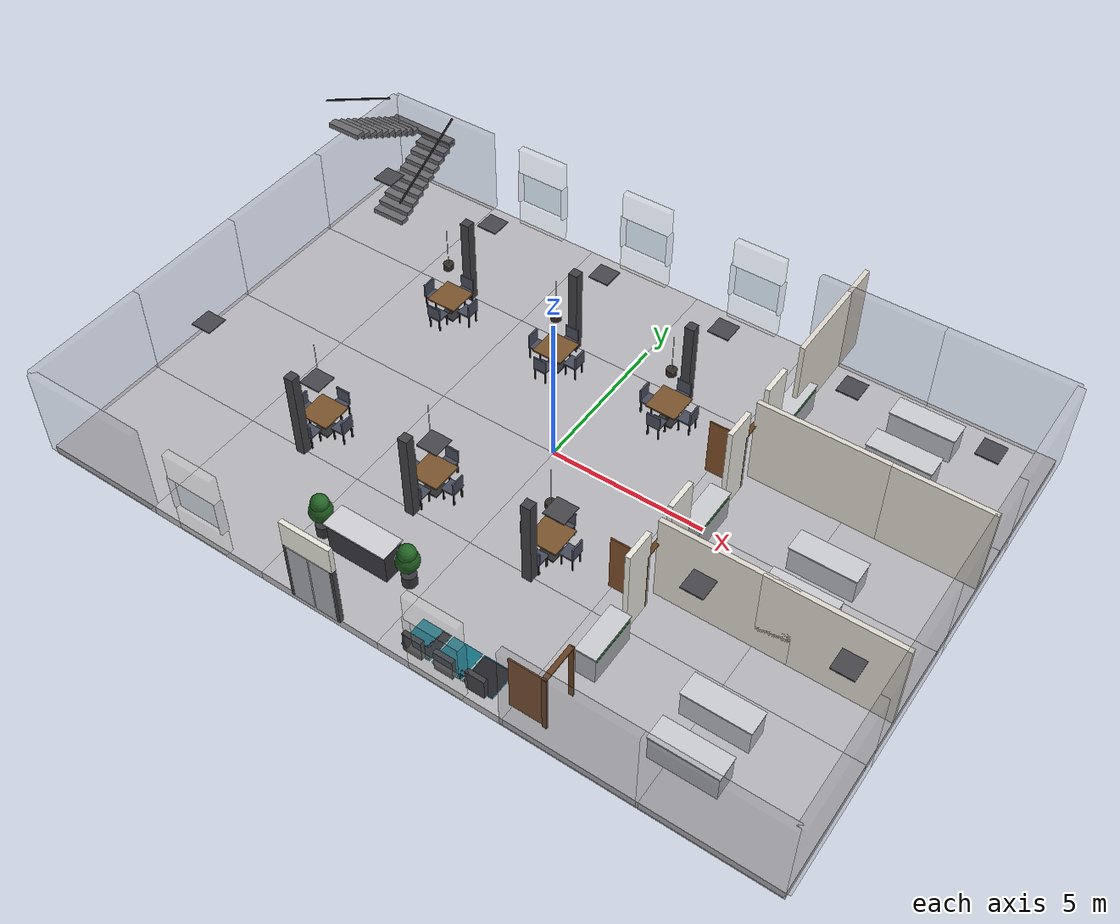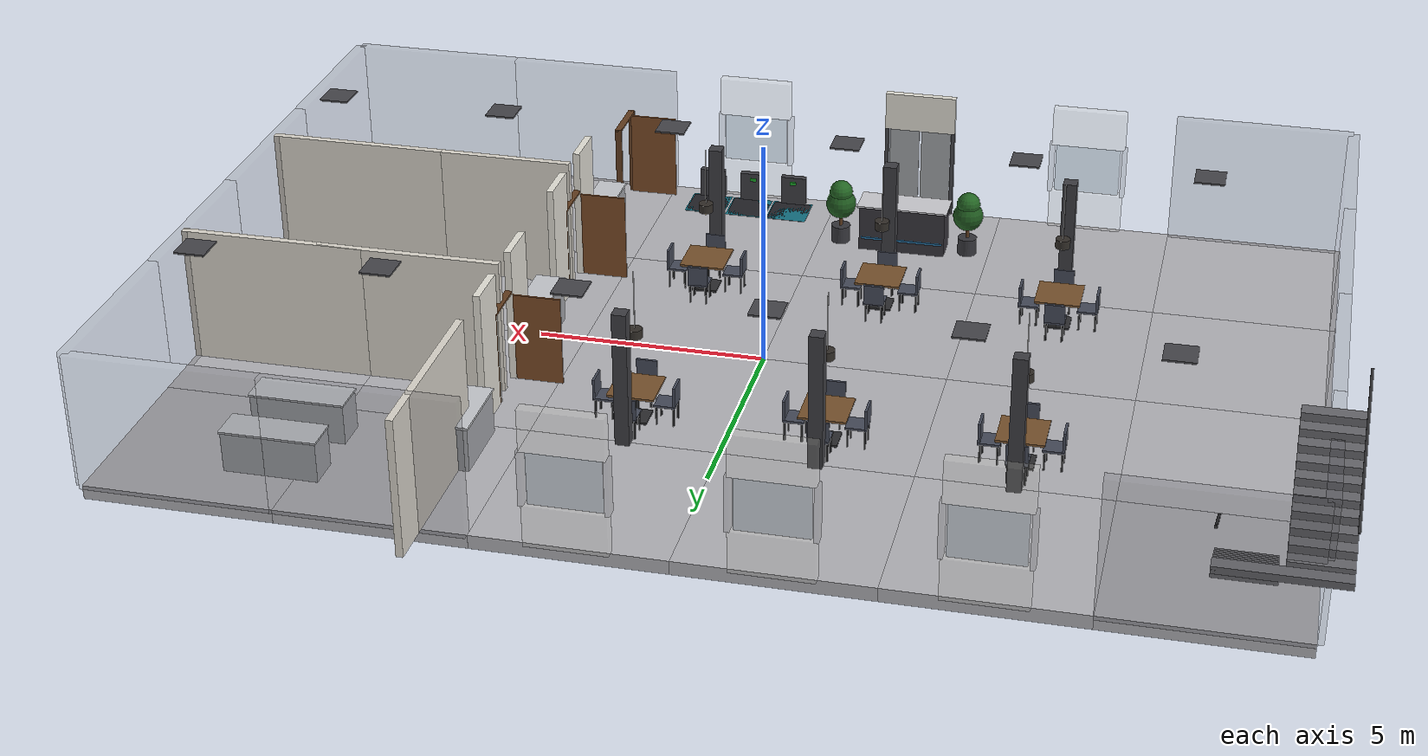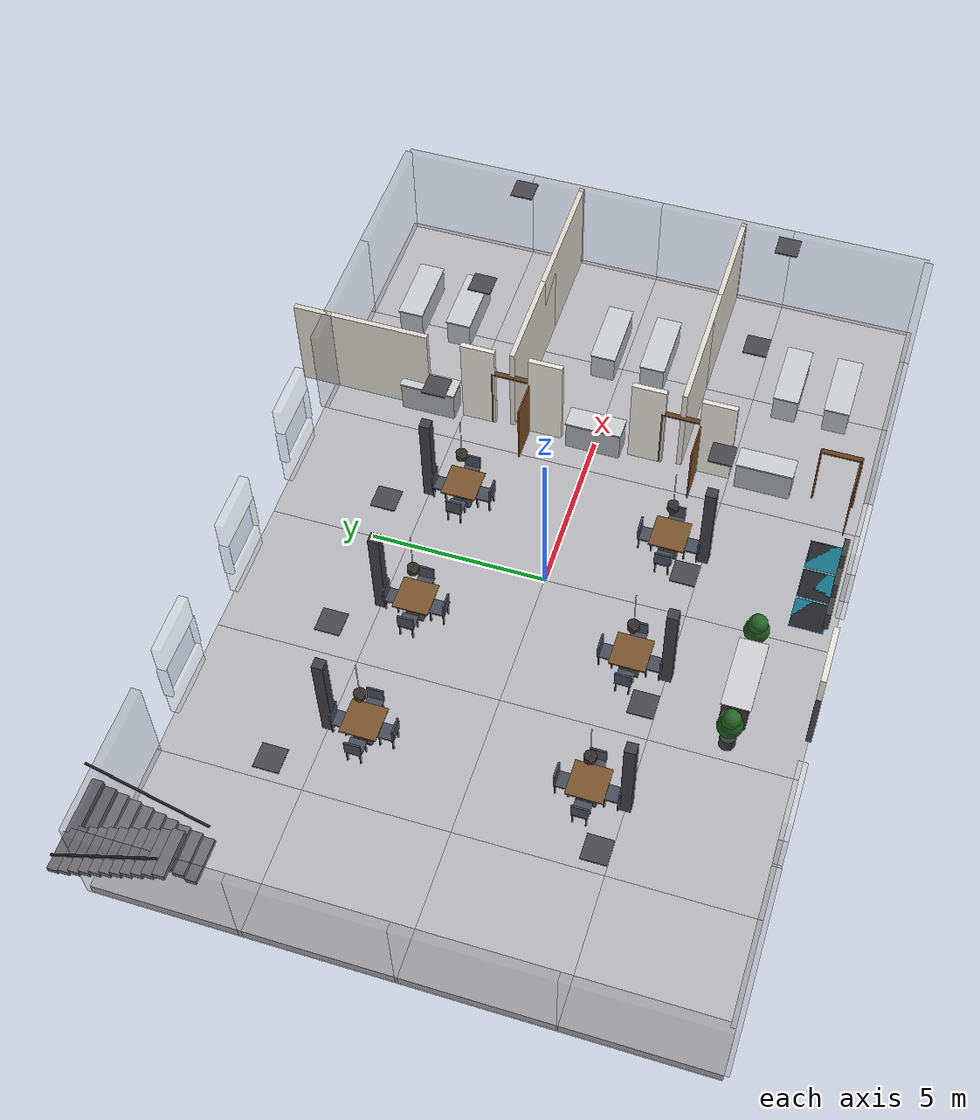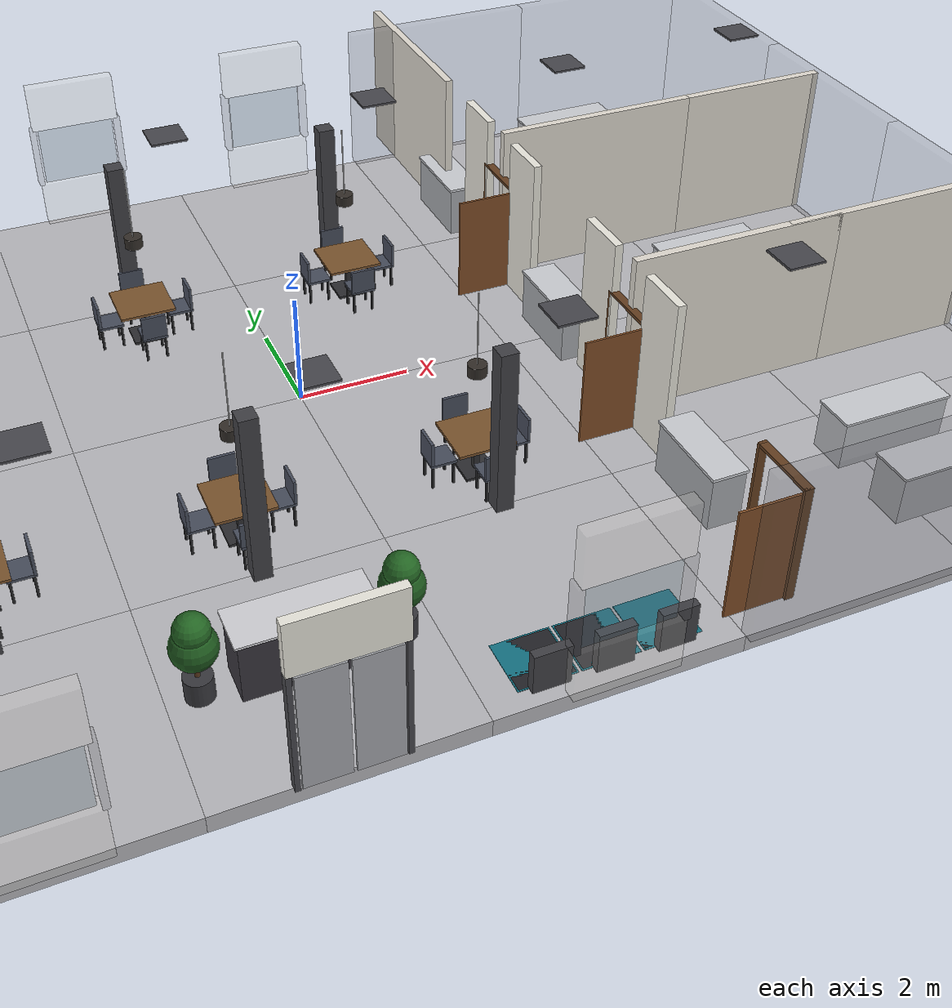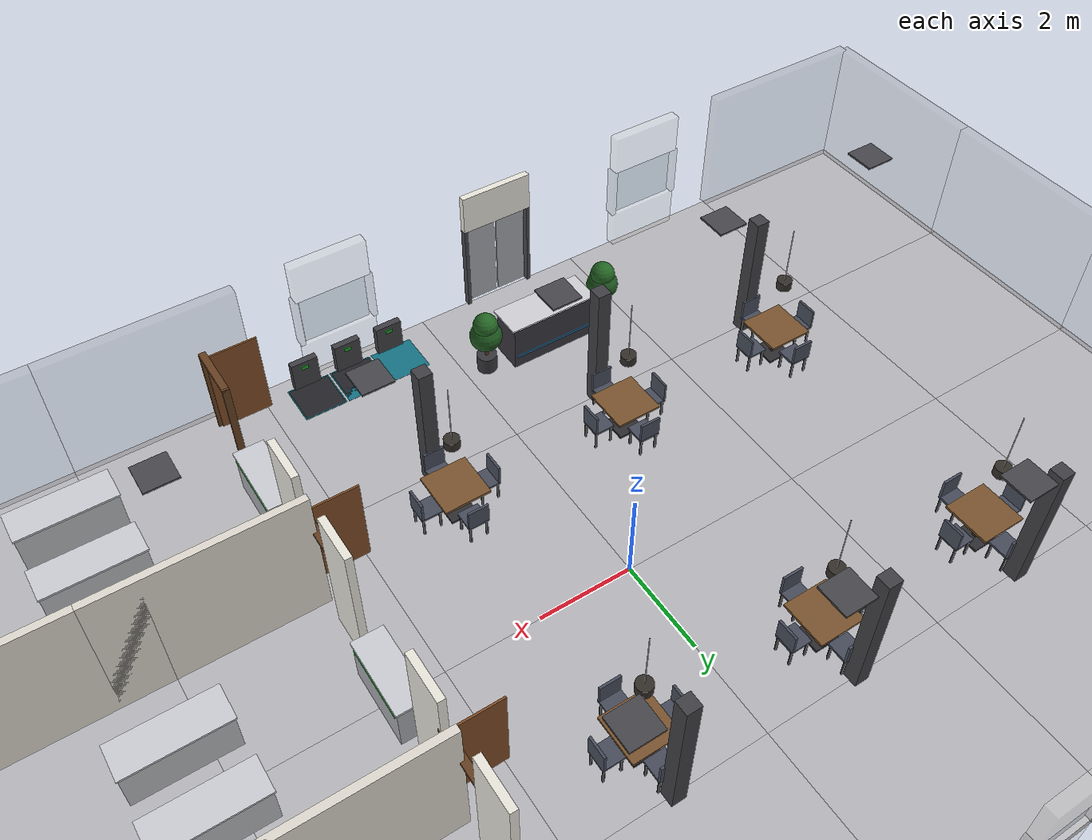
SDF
<?xml version="1.0" ?>
<sdf version="1.6">
  <model name="ground_floor">
    <static>true</static>

    <!-- Floor Slabs (6x4 grid) -->
    <!-- Row 1 (y = -6) -->
    <include><name>floor_slab_0_0</name><uri>model://_components/floor_slab</uri><pose>-10 -6 0 0 0 0</pose></include>
    <include><name>floor_slab_1_0</name><uri>model://_components/floor_slab</uri><pose>-6 -6 0 0 0 0</pose></include>
    <include><name>floor_slab_2_0</name><uri>model://_components/floor_slab</uri><pose>-2 -6 0 0 0 0</pose></include>
    <include><name>floor_slab_3_0</name><uri>model://_components/floor_slab</uri><pose>2 -6 0 0 0 0</pose></include>
    <include><name>floor_slab_4_0</name><uri>model://_components/floor_slab</uri><pose>6 -6 0 0 0 0</pose></include>
    <include><name>floor_slab_5_0</name><uri>model://_components/floor_slab</uri><pose>10 -6 0 0 0 0</pose></include>

    <!-- Row 2 (y = -2) -->
    <include><name>floor_slab_0_1</name><uri>model://_components/floor_slab</uri><pose>-10 -2 0 0 0 0</pose></include>
    <include><name>floor_slab_1_1</name><uri>model://_components/floor_slab</uri><pose>-6 -2 0 0 0 0</pose></include>
    <include><name>floor_slab_2_1</name><uri>model://_components/floor_slab</uri><pose>-2 -2 0 0 0 0</pose></include>
    <include><name>floor_slab_3_1</name><uri>model://_components/floor_slab</uri><pose>2 -2 0 0 0 0</pose></include>
    <include><name>floor_slab_4_1</name><uri>model://_components/floor_slab</uri><pose>6 -2 0 0 0 0</pose></include>
    <include><name>floor_slab_5_1</name><uri>model://_components/floor_slab</uri><pose>10 -2 0 0 0 0</pose></include>

    <!-- Row 3 (y = 2) -->
    <include><name>floor_slab_0_2</name><uri>model://_components/floor_slab</uri><pose>-10 2 0 0 0 0</pose></include>
    <include><name>floor_slab_1_2</name><uri>model://_components/floor_slab</uri><pose>-6 2 0 0 0 0</pose></include>
    <include><name>floor_slab_2_2</name><uri>model://_components/floor_slab</uri><pose>-2 2 0 0 0 0</pose></include>
    <include><name>floor_slab_3_2</name><uri>model://_components/floor_slab</uri><pose>2 2 0 0 0 0</pose></include>
    <include><name>floor_slab_4_2</name><uri>model://_components/floor_slab</uri><pose>6 2 0 0 0 0</pose></include>
    <include><name>floor_slab_5_2</name><uri>model://_components/floor_slab</uri><pose>10 2 0 0 0 0</pose></include>

    <!-- Row 4 (y = 6) -->
    <include><name>floor_slab_0_3</name><uri>model://_components/floor_slab</uri><pose>-10 6 0 0 0 0</pose></include>
    <include><name>floor_slab_1_3</name><uri>model://_components/floor_slab</uri><pose>-6 6 0 0 0 0</pose></include>
    <include><name>floor_slab_2_3</name><uri>model://_components/floor_slab</uri><pose>-2 6 0 0 0 0</pose></include>
    <include><name>floor_slab_3_3</name><uri>model://_components/floor_slab</uri><pose>2 6 0 0 0 0</pose></include>
    <include><name>floor_slab_4_3</name><uri>model://_components/floor_slab</uri><pose>6 6 0 0 0 0</pose></include>
    <include><name>floor_slab_5_3</name><uri>model://_components/floor_slab</uri><pose>10 6 0 0 0 0</pose></include>

    <!-- Exterior Walls -->
    <!-- South Facade (y = -8) -->
    <include><name>ext_wall_s0</name><uri>model://_components/wall_exterior</uri><pose>-10 -8 0 0 0 0</pose></include>
    <include><name>ext_wall_s1</name><uri>model://_components/window_standard</uri><pose>-6 -8 0 0 0 0</pose></include>
    <include><name>ext_wall_s2</name><uri>model://_components/door_double</uri><pose>-2 -8 0 0 0 0</pose></include>
    <include><name>ext_wall_s3</name><uri>model://_components/window_standard</uri><pose>2 -8 0 0 0 0</pose></include>
    <include><name>ext_wall_s4</name><uri>model://_components/wall_exterior</uri><pose>6 -8 0 0 0 0</pose></include>
    <include><name>ext_wall_s5</name><uri>model://_components/wall_exterior</uri><pose>10 -8 0 0 0 0</pose></include>

    <!-- North Facade (y = 8) -->
    <include><name>ext_wall_n0</name><uri>model://_components/wall_exterior</uri><pose>-10 8 0 0 0 3.14159</pose></include>
    <include><name>ext_wall_n1</name><uri>model://_components/window_standard</uri><pose>-6 8 0 0 0 3.14159</pose></include>
    <include><name>ext_wall_n2</name><uri>model://_components/window_standard</uri><pose>-2 8 0 0 0 3.14159</pose></include>
    <include><name>ext_wall_n3</name><uri>model://_components/window_standard</uri><pose>2 8 0 0 0 3.14159</pose></include>
    <include><name>ext_wall_n4</name><uri>model://_components/wall_exterior</uri><pose>6 8 0 0 0 3.14159</pose></include>
    <include><name>ext_wall_n5</name><uri>model://_components/wall_exterior</uri><pose>10 8 0 0 0 3.14159</pose></include>

    <!-- West Facade (x = -12) -->
    <include><name>ext_wall_w0</name><uri>model://_components/wall_exterior</uri><pose>-12 -6 0 0 0 1.5708</pose></include>
    <include><name>ext_wall_w1</name><uri>model://_components/wall_exterior</uri><pose>-12 -2 0 0 0 1.5708</pose></include>
    <include><name>ext_wall_w2</name><uri>model://_components/wall_exterior</uri><pose>-12 2 0 0 0 1.5708</pose></include>
    <include><name>ext_wall_w3</name><uri>model://_components/wall_exterior</uri><pose>-12 6 0 0 0 1.5708</pose></include>

    <!-- East Facade (x = 12) -->
    <include><name>ext_wall_e0</name><uri>model://_components/wall_exterior</uri><pose>12 -6 0 0 0 1.5708</pose></include>
    <include><name>ext_wall_e1</name><uri>model://_components/wall_exterior</uri><pose>12 -2 0 0 0 1.5708</pose></include>
    <include><name>ext_wall_e2</name><uri>model://_components/wall_exterior</uri><pose>12 2 0 0 0 1.5708</pose></include>
    <include><name>ext_wall_e3</name><uri>model://_components/wall_exterior</uri><pose>12 6 0 0 0 1.5708</pose></include>

    <!-- Pillars / Columns -->
    <include><name>column_0</name><uri>model://_components/column</uri><pose>-6 -4 0 0 0 0</pose></include>
    <include><name>column_1</name><uri>model://_components/column</uri><pose>-2 -4 0 0 0 0</pose></include>
    <include><name>column_2</name><uri>model://_components/column</uri><pose>2 -4 0 0 0 0</pose></include>
    <include><name>column_3</name><uri>model://_components/column</uri><pose>-6 4 0 0 0 0</pose></include>
    <include><name>column_4</name><uri>model://_components/column</uri><pose>-2 4 0 0 0 0</pose></include>
    <include><name>column_5</name><uri>model://_components/column</uri><pose>2 4 0 0 0 0</pose></include>

    <!-- Staircase (Back-Left Area) - moved to the former lift spot, same working rotation -->
    <include><name>stairs</name><uri>model://_fixtures/staircase</uri><pose>-10 5.5 0 0 0 1.5708</pose></include>

    <!-- Kitchen Partition Wall (x = 5.0) and Gaps for Counters / Doors -->
    <include><name>kitchen_partition_n</name><uri>model://_components/wall_segment_4m</uri><pose>5.0 7.0 0 0 0 1.5708</pose></include>
    <include><name>kitchen_partition_mid1</name><uri>model://_components/wall_segment</uri><pose>5.0 3.5 0 0 0 1.5708</pose></include>
    <include><name>kitchen_partition_mid2</name><uri>model://_components/wall_segment</uri><pose>5.0 1.5 0 0 0 1.5708</pose></include>
    <include><name>kitchen_partition_mid3</name><uri>model://_components/wall_segment</uri><pose>5.0 -1.5 0 0 0 1.5708</pose></include>
    <include><name>kitchen_partition_mid4</name><uri>model://_components/wall_segment</uri><pose>5.0 -3.5 0 0 0 1.5708</pose></include>

    <!-- Kitchen Side Walls (East-West division walls) -->
    <!-- Kitchen 1 vs Kitchen 2 (y = 2.5) -->
    <include><name>kitchen_wall_1_2_a</name><uri>model://_components/wall_segment_4m</uri><pose>7.0 2.5 0 0 0 0</pose></include>
    <include><name>kitchen_wall_1_2_b</name><uri>model://_components/wall_segment_4m</uri><pose>10.0 2.5 0 0 0 0</pose></include>
    <!-- Kitchen 2 vs Kitchen 3 (y = -2.5) -->
    <include><name>kitchen_wall_2_3_a</name><uri>model://_components/wall_segment_4m</uri><pose>7.0 -2.5 0 0 0 0</pose></include>
    <include><name>kitchen_wall_2_3_b</name><uri>model://_components/wall_segment_4m</uri><pose>10.0 -2.5 0 0 0 0</pose></include>

    <!-- Kitchen Entry Doors (placed in partition wall at x = 5.0) -->
    <include><name>kitchen_door_1</name><uri>model://_components/door_single_wide</uri><pose>5.0 2.5 0 0 0 1.5708</pose></include>
    <include><name>kitchen_door_2</name><uri>model://_components/door_single_wide</uri><pose>5.0 -2.5 0 0 0 1.5708</pose></include>
    <include><name>kitchen_door_3</name><uri>model://_components/door_single_wide</uri><pose>5.0 -7.0 0 0 0 1.5708</pose></include>

    <!-- Three Receiving Counters (Handoff area) -->
    <include><name>receiving_counter_1</name><uri>model://_furniture/receiving_counter</uri><pose>5.0 5.0 0 0 0 1.5708</pose></include>
    <include><name>receiving_counter_2</name><uri>model://_furniture/receiving_counter</uri><pose>5.0 0.0 0 0 0 1.5708</pose></include>
    <include><name>receiving_counter_3</name><uri>model://_furniture/receiving_counter</uri><pose>5.0 -5.0 0 0 0 1.5708</pose></include>

    <!-- Kitchen Internal Counters -->
    <!-- Kitchen 1 -->
    <include><name>k1_counter_1</name><uri>model://_furniture/kitchen_counter</uri><pose>8.5 5.0 0 0 0 0</pose></include>
    <include><name>k1_counter_2</name><uri>model://_furniture/kitchen_counter</uri><pose>8.5 6.5 0 0 0 0</pose></include>
    <!-- Kitchen 2 -->
    <include><name>k2_counter_1</name><uri>model://_furniture/kitchen_counter</uri><pose>8.5 0.5 0 0 0 0</pose></include>
    <include><name>k2_counter_2</name><uri>model://_furniture/kitchen_counter</uri><pose>8.5 -1.0 0 0 0 0</pose></include>
    <!-- Kitchen 3 -->
    <include><name>k3_counter_1</name><uri>model://_furniture/kitchen_counter</uri><pose>8.5 -5.0 0 0 0 0</pose></include>
    <include><name>k3_counter_2</name><uri>model://_furniture/kitchen_counter</uri><pose>8.5 -6.5 0 0 0 0</pose></include>

    <!-- Dining Hall: 6 Tables and 24 Chairs -->
    <!-- Table 1 (x = -6, y = 3) -->
    <include><name>table_1</name><uri>model://_furniture/dining_table_4</uri><pose>-6 3 0 0 0 0</pose></include>
    <include><name>table_1_chair_n</name><uri>model://_furniture/chair</uri><pose>-6 3.65 0 0 0 -1.5708</pose></include>
    <include><name>table_1_chair_s</name><uri>model://_furniture/chair</uri><pose>-6 2.35 0 0 0 1.5708</pose></include>
    <include><name>table_1_chair_e</name><uri>model://_furniture/chair</uri><pose>-5.35 3 0 0 0 3.14159</pose></include>
    <include><name>table_1_chair_w</name><uri>model://_furniture/chair</uri><pose>-6.65 3 0 0 0 0</pose></include>

    <!-- Table 2 (x = -6, y = -3) -->
    <include><name>table_2</name><uri>model://_furniture/dining_table_4</uri><pose>-6 -3 0 0 0 0</pose></include>
    <include><name>table_2_chair_n</name><uri>model://_furniture/chair</uri><pose>-6 -2.35 0 0 0 -1.5708</pose></include>
    <include><name>table_2_chair_s</name><uri>model://_furniture/chair</uri><pose>-6 -3.65 0 0 0 1.5708</pose></include>
    <include><name>table_2_chair_e</name><uri>model://_furniture/chair</uri><pose>-5.35 -3 0 0 0 3.14159</pose></include>
    <include><name>table_2_chair_w</name><uri>model://_furniture/chair</uri><pose>-6.65 -3 0 0 0 0</pose></include>

    <!-- Table 3 (x = -2, y = 3) -->
    <include><name>table_3</name><uri>model://_furniture/dining_table_4</uri><pose>-2 3 0 0 0 0</pose></include>
    <include><name>table_3_chair_n</name><uri>model://_furniture/chair</uri><pose>-2 3.65 0 0 0 -1.5708</pose></include>
    <include><name>table_3_chair_s</name><uri>model://_furniture/chair</uri><pose>-2 2.35 0 0 0 1.5708</pose></include>
    <include><name>table_3_chair_e</name><uri>model://_furniture/chair</uri><pose>-1.35 3 0 0 0 3.14159</pose></include>
    <include><name>table_3_chair_w</name><uri>model://_furniture/chair</uri><pose>-2.65 3 0 0 0 0</pose></include>

    <!-- Table 4 (x = -2, y = -3) -->
    <include><name>table_4</name><uri>model://_furniture/dining_table_4</uri><pose>-2 -3 0 0 0 0</pose></include>
    <include><name>table_4_chair_n</name><uri>model://_furniture/chair</uri><pose>-2 -2.35 0 0 0 -1.5708</pose></include>
    <include><name>table_4_chair_s</name><uri>model://_furniture/chair</uri><pose>-2 -3.65 0 0 0 1.5708</pose></include>
    <include><name>table_4_chair_e</name><uri>model://_furniture/chair</uri><pose>-1.35 -3 0 0 0 3.14159</pose></include>
    <include><name>table_4_chair_w</name><uri>model://_furniture/chair</uri><pose>-2.65 -3 0 0 0 0</pose></include>

    <!-- Table 5 (x = 2, y = 3) -->
    <include><name>table_5</name><uri>model://_furniture/dining_table_4</uri><pose>2 3 0 0 0 0</pose></include>
    <include><name>table_5_chair_n</name><uri>model://_furniture/chair</uri><pose>2 3.65 0 0 0 -1.5708</pose></include>
    <include><name>table_5_chair_s</name><uri>model://_furniture/chair</uri><pose>2 2.35 0 0 0 1.5708</pose></include>
    <include><name>table_5_chair_e</name><uri>model://_furniture/chair</uri><pose>2.65 3 0 0 0 3.14159</pose></include>
    <include><name>table_5_chair_w</name><uri>model://_furniture/chair</uri><pose>1.35 3 0 0 0 0</pose></include>

    <!-- Table 6 (x = 2, y = -3) -->
    <include><name>table_6</name><uri>model://_furniture/dining_table_4</uri><pose>2 -3 0 0 0 0</pose></include>
    <include><name>table_6_chair_n</name><uri>model://_furniture/chair</uri><pose>2 -2.35 0 0 0 -1.5708</pose></include>
    <include><name>table_6_chair_s</name><uri>model://_furniture/chair</uri><pose>2 -3.65 0 0 0 1.5708</pose></include>
    <include><name>table_6_chair_e</name><uri>model://_furniture/chair</uri><pose>2.65 -3 0 0 0 3.14159</pose></include>
    <include><name>table_6_chair_w</name><uri>model://_furniture/chair</uri><pose>1.35 -3 0 0 0 0</pose></include>

    <!-- Reception Area (near entrance) -->
    <include><name>reception_desk</name><uri>model://_furniture/reception_counter</uri><pose>-2 -6 0 0 0 3.14159</pose></include>
    <include><name>plant_lobby_l</name><uri>model://_furniture/indoor_plant</uri><pose>-3.5 -6 0 0 0 0</pose></include>
    <include><name>plant_lobby_r</name><uri>model://_furniture/indoor_plant</uri><pose>-0.5 -6 0 0 0 0</pose></include>

    <!-- Charging Station Area (near kitchens / service pathway) -->
    <include><name>dock_1</name><uri>model://_furniture/charging_dock</uri><pose>1.0 -7.2 0 0 0 1.5708</pose></include>
    <include><name>dock_2</name><uri>model://_furniture/charging_dock</uri><pose>2.0 -7.2 0 0 0 1.5708</pose></include>
    <include><name>dock_3</name><uri>model://_furniture/charging_dock</uri><pose>3.0 -7.2 0 0 0 1.5708</pose></include>

    <!-- Ceiling Lights (arranged on ceiling grid at z = 3.4m) -->
    <include><name>light_c0_0</name><uri>model://_lighting/ceiling_light_panel</uri><pose>-9 -4 3.4 0 0 0</pose></include>
    <include><name>light_c1_0</name><uri>model://_lighting/ceiling_light_panel</uri><pose>-5 -4 3.4 0 0 0</pose></include>
    <include><name>light_c2_0</name><uri>model://_lighting/ceiling_light_panel</uri><pose>-1 -4 3.4 0 0 0</pose></include>
    <include><name>light_c3_0</name><uri>model://_lighting/ceiling_light_panel</uri><pose>3 -4 3.4 0 0 0</pose></include>
    <include><name>light_c4_0</name><uri>model://_lighting/ceiling_light_panel</uri><pose>7 -4 3.4 0 0 0</pose></include>
    <include><name>light_c5_0</name><uri>model://_lighting/ceiling_light_panel</uri><pose>11 -4 3.4 0 0 0</pose></include>

    <include><name>light_c0_1</name><uri>model://_lighting/ceiling_light_panel</uri><pose>-9 4 3.4 0 0 0</pose></include>
    <include><name>light_c1_1</name><uri>model://_lighting/ceiling_light_panel</uri><pose>-5 4 3.4 0 0 0</pose></include>
    <include><name>light_c2_1</name><uri>model://_lighting/ceiling_light_panel</uri><pose>-1 4 3.4 0 0 0</pose></include>
    <include><name>light_c3_1</name><uri>model://_lighting/ceiling_light_panel</uri><pose>3 4 3.4 0 0 0</pose></include>
    <include><name>light_c4_1</name><uri>model://_lighting/ceiling_light_panel</uri><pose>7 4 3.4 0 0 0</pose></include>
    <include><name>light_c5_1</name><uri>model://_lighting/ceiling_light_panel</uri><pose>11 4 3.4 0 0 0</pose></include>

    <!-- Elegant Pendant Lights over Dining Tables -->
    <include><name>pendant_light_1</name><uri>model://_lighting/pendant_light</uri><pose>-6 3 3.4 0 0 0</pose></include>
    <include><name>pendant_light_2</name><uri>model://_lighting/pendant_light</uri><pose>-6 -3 3.4 0 0 0</pose></include>
    <include><name>pendant_light_3</name><uri>model://_lighting/pendant_light</uri><pose>-2 3 3.4 0 0 0</pose></include>
    <include><name>pendant_light_4</name><uri>model://_lighting/pendant_light</uri><pose>-2 -3 3.4 0 0 0</pose></include>
    <include><name>pendant_light_5</name><uri>model://_lighting/pendant_light</uri><pose>2 3 3.4 0 0 0</pose></include>
    <include><name>pendant_light_6</name><uri>model://_lighting/pendant_light</uri><pose>2 -3 3.4 0 0 0</pose></include>

  </model>
</sdf>
